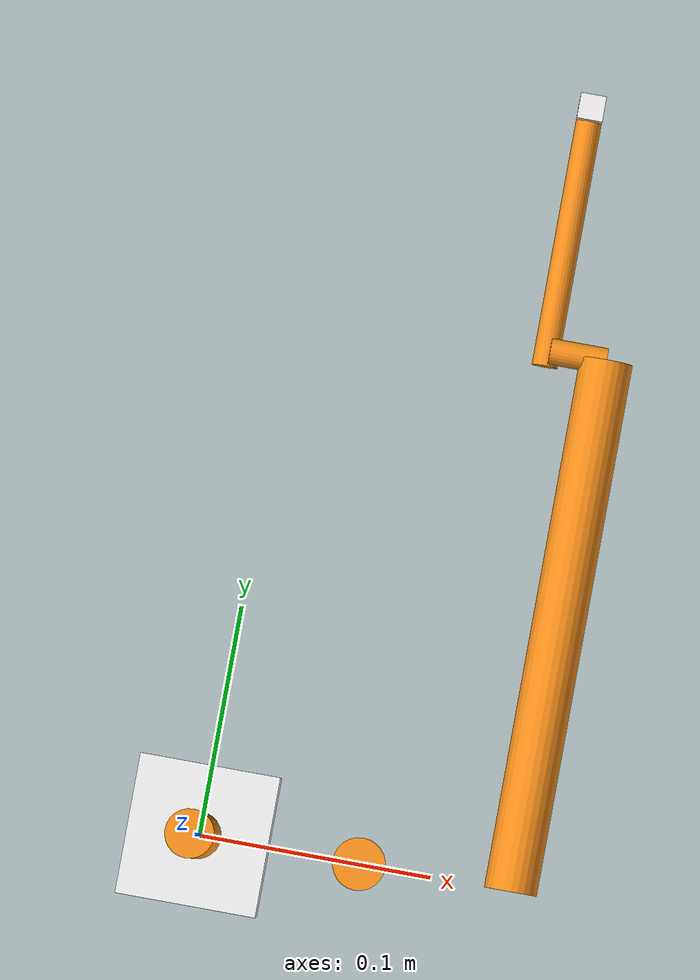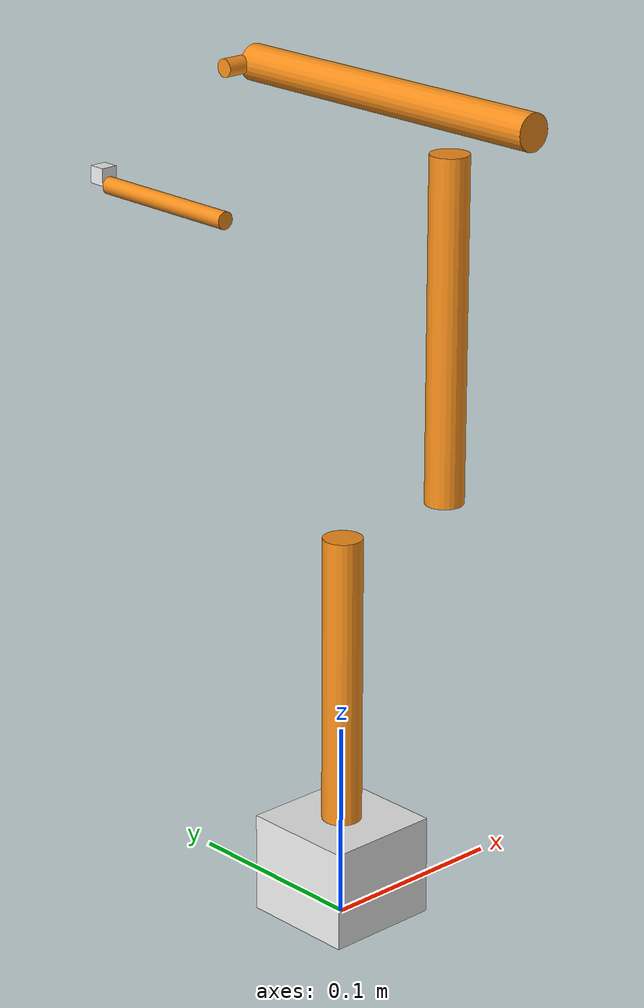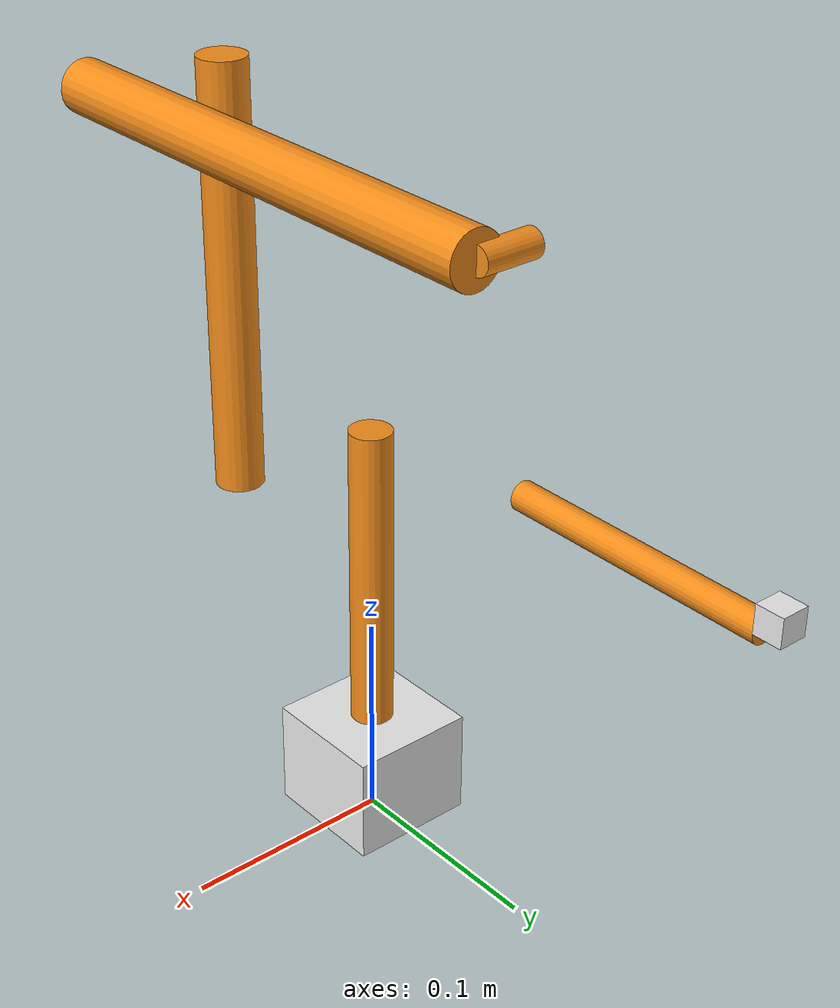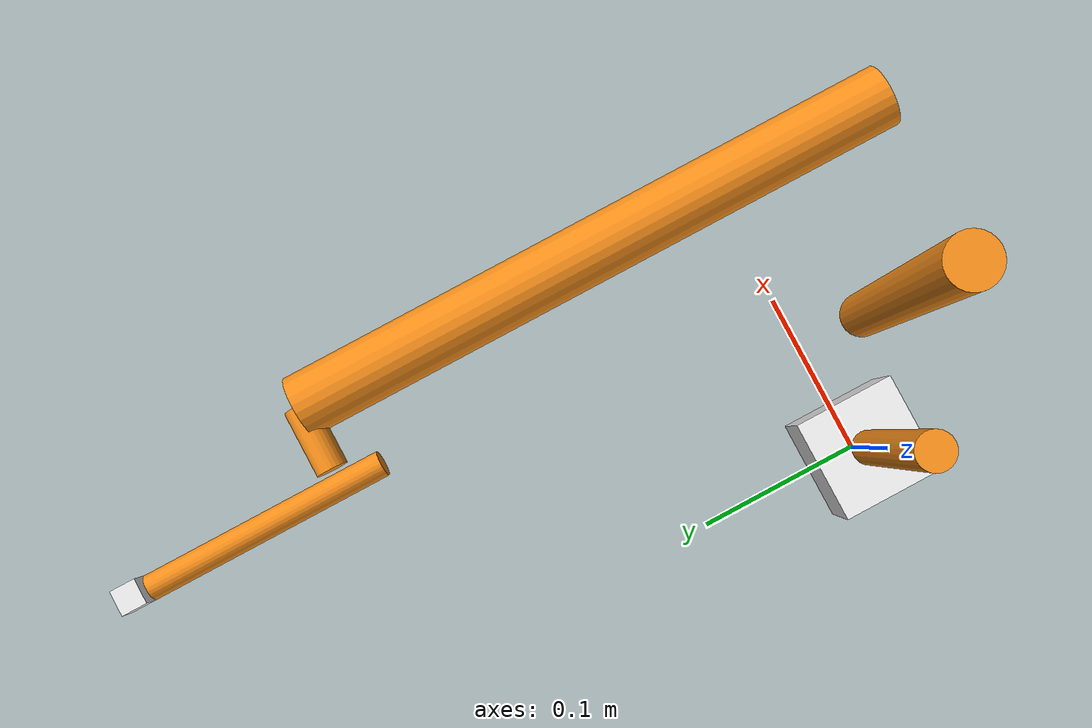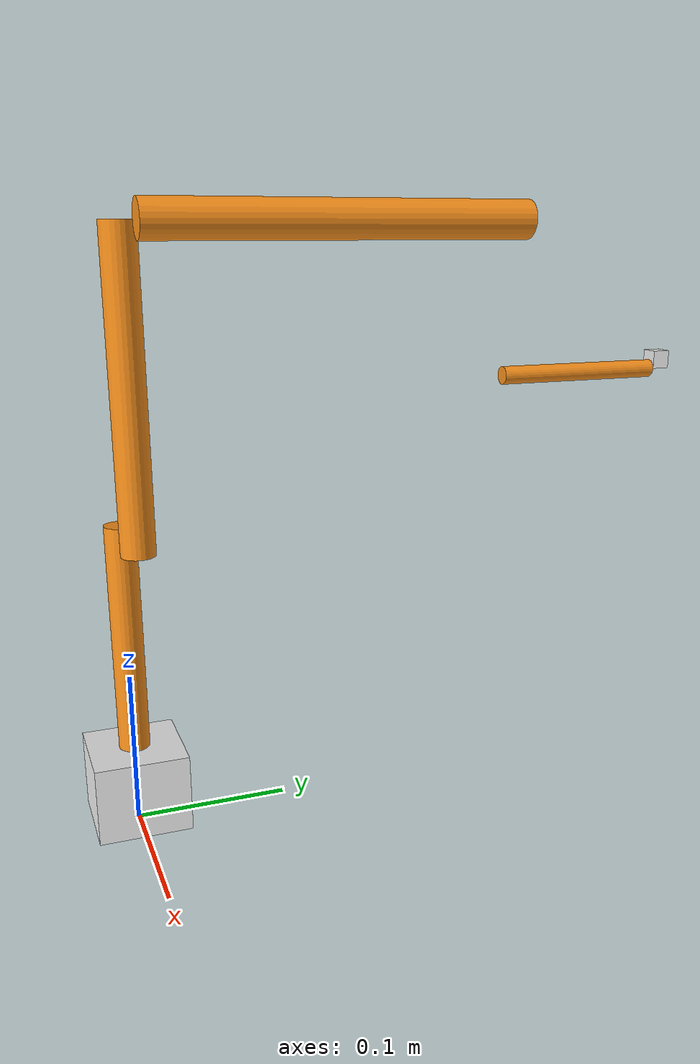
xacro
<?xml version="1.0"?>
<robot name="grips" xmlns:xacro="http://www.ros.org/wiki/xacro">

  <!-- Import common macros-->
  <xacro:include filename="$(find grips_description)/urdf/common.xacro" />
  <!-- Import materials for rviz-->
  <xacro:include filename="$(find grips_description)/urdf/materials.xacro" />
  <!-- Import robot without gripper -->
  <xacro:include filename="$(find grips_description)/urdf/serial_master.xacro" />

  <!-- Create the grips robot -->
  <link name="world" />

  <serial_arm parent="world"/>

</robot>

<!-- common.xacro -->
<robot xmlns:xacro="http://www.ros.org/wiki/xacro">
  <!-- Auxiliar Values -->
  <property name="pi" value="3.1415926535897931" />
  <property name="gripper_effort" value="200" />
  <property name="gripper_velocity" value="15" />
  <property name="max_effort" value="400" />
  <property name="max_velocity" value="5" />

  <!-- Macros -->
  <macro name="cylinder_collision" params="radius length">
    <collision>
      <origin xyz="0 0 ${length/2}" rpy="0 0 0"/>
      <geometry>
        <cylinder radius="${radius}" length="${length}"/>
      </geometry>
    </collision>
  </macro>
  <macro name="cylinder_inertia" params="mass radius length">
    <inertial>
      <origin xyz="0 0 ${length/2}" rpy="0 0 0" />
      <mass value="${mass}" />
      <inertia  ixx="${mass*radius^2 / 4  + mass*length^2 / 12}" ixy="0.0"  ixz="0.0"
                iyy="${mass*radius^2 / 4  + mass*length^2 / 12}" iyz="0.0"
                izz="${mass*radius^2 / 2}" />
    </inertial>
  </macro>
  <!-- Link Macro -->
  <macro name="create_link" params="name color mesh *collision *inertial">
    <link name="${name}">
      <visual>
        <geometry>
          <mesh filename="${mesh}" />
        </geometry>
        <material name="${color}" />
      </visual>
      <xacro:insert_block name="collision" />
      <xacro:insert_block name="inertial" />
    </link>
  </macro>
  <!-- A smaller dummy link makes the model to explode in Gazebo -->
  <macro name="dummy_link" params="name">
    <link name="${name}">
      <visual>
        <geometry>
          <sphere radius="0.01"/>
        </geometry>
        <material name="blue" />
      </visual>
      <collision>
        <geometry>
          <sphere radius="0.01"/>
        </geometry>
      </collision>
      <cylinder_inertia radius="0.01" length="0.02" mass="0.05"/>
    </link>
  </macro>
  <!-- Transmission Macro -->
  <macro name="simple_transmission" params="joint">
    <transmission name="${joint}_tran" type="transmission_interface/SimpleTransmission">
      <type>transmission_interface/SimpleTransmission</type>
      <joint name="${joint}"/>
      <actuator name="${joint}_motor">
        <hardwareInterface>EffortJointInterface</hardwareInterface>
        <mechanicalReduction>1</mechanicalReduction>
      </actuator>
      <mechanicalReduction>1</mechanicalReduction>
    </transmission>
  </macro>
</robot>

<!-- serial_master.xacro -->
<robot xmlns:xacro="http://www.ros.org/wiki/xacro">
  <!-- Dimensions -->

  <property name="base_radius" value="0.06" />
  <property name="base_length" value="0.051359" />
  <property name="link1_radius" value="0.01" />
  <property name="link1_length" value="0.149225" />
  <property name="dist_1_2" value="0.069075" />
  <property name="link2_radius" value="0.01" />
  <property name="link2_length" value="0.1778" />
  <property name="dist_2_3" value="0.05795" />
  <property name="link3_radius" value="0.01" />
  <property name="link3_length" value="0.2032" />

  <property name="link4_radius" value="0.005" />
  <property name="link4_length" value="0.021605" />
  <property name="dist_4_5" value="0.083109" />
  <property name="link5_radius" value="0.005" />
  <property name="link5_length" value="0.09678" />

  <property name="dist_5_eef" value="0.005338" />

  <property name="eef_size" value="0.01" />

  <macro name="serial_arm" params="parent">
   <link name="base_link">
    <collision>
      <origin xyz="0 0 ${base_length/2}" rpy="0 0 0"/>
      <geometry>
    <box size="${base_radius} ${base_radius} ${base_length}"/>
      </geometry>
    </collision>

    <visual>
      <origin xyz="0 0 ${base_length/2}" rpy="0 0 0"/>
      <geometry>
    <box size="${base_radius} ${base_radius} ${base_length}"/>
      </geometry>
      <material name="white"/>
    </visual>
   </link>

   <link name="link1">
    <visual>
      <origin xyz="0 0 ${link1_length/2}" rpy="0 0 0"/>
      <geometry>
        <cylinder radius="${link1_radius}" length="${link1_length}"/>
      </geometry>
      <material name="orange"/>
    </visual>

    <collision>
      <origin xyz="0 0 ${link1_length/2}" rpy="0 0 0"/>
      <geometry>
        <cylinder radius="${link1_radius}" length="${link1_length}"/>
      </geometry>
    </collision>
   </link>

   <link name="link2">
    <visual>
      <origin xyz="0 0 ${link2_length/2}" rpy="0 0 0"/>
      <geometry>
        <cylinder radius="${link2_radius}" length="${link2_length}"/>
      </geometry>
      <material name="orange"/>
    </visual>

    <collision>
      <origin xyz="0 0 ${link2_length/2}" rpy="0 0 0"/>
      <geometry>
        <cylinder radius="${link2_radius}" length="${link2_length}"/>
      </geometry>
    </collision>
   </link>

   <link name="link3">
    <visual>
      <origin xyz="0 ${link3_length/2} 0" rpy="${pi/2} 0 0"/>
      <geometry>
        <cylinder radius="${link3_radius}" length="${link3_length}"/>
      </geometry>
      <material name="orange"/>
    </visual>

    <collision>
      <origin xyz="0 ${link3_length/2} 0" rpy="${pi/2} 0 0"/>
      <geometry>
        <cylinder radius="${link3_radius}" length="${link3_length}"/>
      </geometry>
    </collision>
   </link>

   <link name="link4">
    <visual>
      <origin xyz="${-link4_length/2} 0 0" rpy="0 ${pi/2} 0"/>
      <geometry>
        <cylinder radius="${link4_radius}" length="${link4_length}"/>
      </geometry>
      <material name="orange"/>
    </visual>

    <collision>
      <origin xyz="${-link4_length/2} 0 0" rpy="0 ${pi/2} 0"/>
      <geometry>
        <cylinder radius="${link4_radius}" length="${link4_length}"/>
      </geometry>
    </collision>
   </link>

   <link name="link5">
    <visual>
      <origin xyz="0 ${link5_length/2} 0" rpy="${pi/2} 0 0"/>
      <geometry>
        <cylinder radius="${link5_radius}" length="${link5_length}"/>
      </geometry>
      <material name="orange"/>
    </visual>

    <collision>
      <origin xyz="0 ${link5_length/2} 0" rpy="${pi/2} 0 0"/>
      <geometry>
        <cylinder radius="${link5_radius}" length="${link5_length}"/>
      </geometry>
    </collision>
   </link>

   <link name="eef">
    <collision>
      <origin xyz="0 ${eef_size/2} 0 " rpy="0 0 0"/>
      <geometry>
    <box size="${eef_size} ${eef_size} ${eef_size}"/>
      </geometry>
    </collision>

    <visual>
      <origin xyz="0 ${eef_size/2} 0 " rpy="0 0 0"/>
      <geometry>
    <box size="${eef_size} ${eef_size} ${eef_size}"/>
      </geometry>
      <material name="white"/>
    </visual>
   </link>

    <!-- Joints -->
    <joint name="anchor" type="fixed">
      <origin xyz="0 0 0.001" rpy="0 0 0" />
      <parent link="${parent}" />
      <child link="base_link" />
    </joint>

    <joint name="joint1" type="revolute">
      <child link="link1" />
      <parent link="base_link" />
      <axis xyz="0 0 1" />
      <origin xyz="0 0 ${base_length}" rpy="0 0 0" />
      <limit lower="${-90*pi/180}" upper="${90*pi/180}" effort="${max_effort}" velocity="${100*pi/180}" />
    </joint>

    <joint name="joint2" type="revolute">
      <parent link="link1" />
      <child link="link2" />
      <axis xyz="-1 0 0" />
      <origin xyz="${dist_1_2} 0 ${link1_length}" rpy="0 0 0" />
      <limit lower="${-45*pi/180}" upper="${90*pi/180}" effort="${max_effort}" velocity="${100*pi/180}" />
    </joint>

    <joint name="joint3" type="revolute">
      <parent link="link2" />
      <child link="link3" />
      <axis xyz="-1 0 0" />
      <origin xyz="${dist_2_3} 0 ${link2_length}" rpy="0 0 0" />
      <limit lower="${-30*pi/180}" upper="${60*pi/180}" effort="${max_effort}" velocity="${100*pi/180}" />
    </joint>

    <joint name="joint4" type="revolute">
      <parent link="link3" />
      <child link="link4" />
      <axis xyz="0 0 1" />
      <origin xyz="0 ${link3_length} 0" rpy="0 0 0" />
      <limit lower="${-60*pi/180}" upper="${60*pi/180}" effort="${max_effort}" velocity="${100*pi/180}" />
    </joint>

    <joint name="joint5" type="revolute">
      <parent link="link4" />
      <child link="link5" />
      <axis xyz="-1 0 0" />
      <origin xyz="${-link4_length} 0 ${-dist_4_5}" rpy="0 0 0" />
      <limit lower="${-30*pi/180}" upper="${45*pi/180}" effort="${max_effort}" velocity="${100*pi/180}" />
    </joint>

    <joint name="joint6" type="revolute">
      <parent link="link5" />
      <child link="eef" />
      <axis xyz="0 1 0" />
      <origin xyz="0 ${link5_length} ${dist_5_eef}" rpy="0 0 0" />
      <limit lower="${-50*pi/180}" upper="${50*pi/180}" effort="${max_effort}" velocity="${100*pi/180}" />
    </joint>

  </macro>
</robot>
